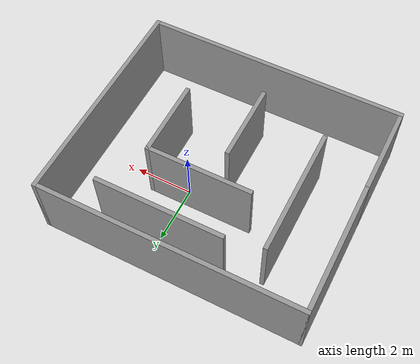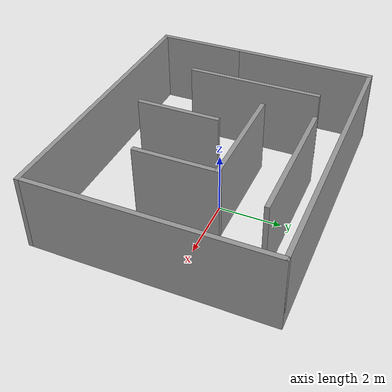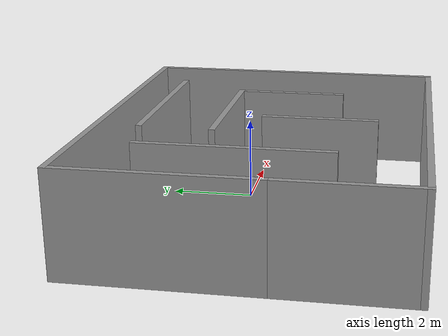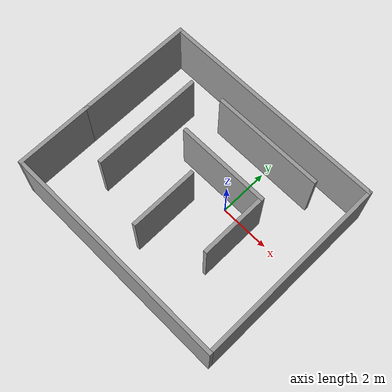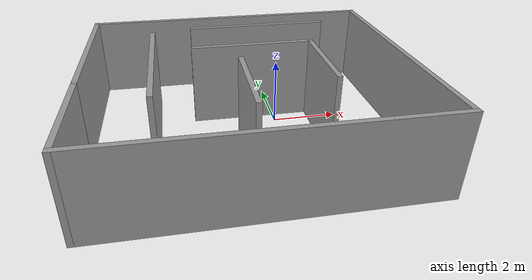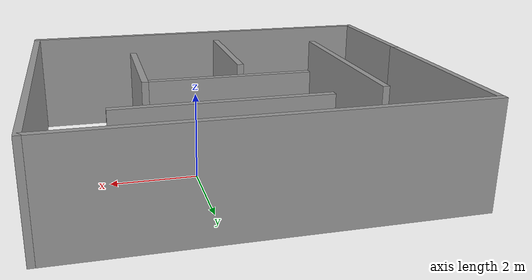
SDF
<?xml version='1.0'?>
<sdf version='1.7'>
  <model name='maze'>
    <pose>-0.983185 -0.631696 0 0 -0 0</pose>
    <link name='Wall_10'>
      <collision name='Wall_10_Collision'>
        <geometry>
          <box>
            <size>3.75 0.15 2.5</size>
          </box>
        </geometry>
        <pose>0 0 1.25 0 -0 0</pose>
      </collision>
      <visual name='Wall_10_Visual'>
        <pose>0 0 1.25 0 -0 0</pose>
        <geometry>
          <box>
            <size>3.75 0.15 2.5</size>
          </box>
        </geometry>
        <material>
          <script>
            <uri>file://media/materials/scripts/gazebo.material</uri>
            <name>Gazebo/Grey</name>
          </script>
          <ambient>1 1 1 1</ambient>
        </material>
        <meta>
          <layer>0</layer>
        </meta>
      </visual>
      <pose>0.350059 1.05811 0 0 -0 0</pose>
    </link>
    <link name='Wall_11'>
      <collision name='Wall_11_Collision'>
        <geometry>
          <box>
            <size>2.75 0.15 2.5</size>
          </box>
        </geometry>
        <pose>0 0 1.25 0 -0 0</pose>
      </collision>
      <visual name='Wall_11_Visual'>
        <pose>0 0 1.25 0 -0 0</pose>
        <geometry>
          <box>
            <size>2.75 0.15 2.5</size>
          </box>
        </geometry>
        <material>
          <script>
            <uri>file://media/materials/scripts/gazebo.material</uri>
            <name>Gazebo/Grey</name>
          </script>
          <ambient>1 1 1 1</ambient>
        </material>
        <meta>
          <layer>0</layer>
        </meta>
      </visual>
      <pose>2.15006 -0.241885 0 0 -0 -1.5708</pose>
    </link>
    <link name='Wall_13'>
      <collision name='Wall_13_Collision'>
        <geometry>
          <box>
            <size>2.75 0.15 2.5</size>
          </box>
        </geometry>
        <pose>0 0 1.25 0 -0 0</pose>
      </collision>
      <visual name='Wall_13_Visual'>
        <pose>0 0 1.25 0 -0 0</pose>
        <geometry>
          <box>
            <size>2.75 0.15 2.5</size>
          </box>
        </geometry>
        <material>
          <script>
            <uri>file://media/materials/scripts/gazebo.material</uri>
            <name>Gazebo/Grey</name>
          </script>
          <ambient>1 1 1 1</ambient>
        </material>
        <meta>
          <layer>0</layer>
        </meta>
      </visual>
      <pose>-0.177816 -1.25414 0 0 -0 -1.5708</pose>
    </link>
    <link name='Wall_15'>
      <collision name='Wall_15_Collision'>
        <geometry>
          <box>
            <size>4.5 0.15 2.5</size>
          </box>
        </geometry>
        <pose>0 0 1.25 0 -0 0</pose>
      </collision>
      <visual name='Wall_15_Visual'>
        <pose>0 0 1.25 0 -0 0</pose>
        <geometry>
          <box>
            <size>4.5 0.15 2.5</size>
          </box>
        </geometry>
        <material>
          <script>
            <uri>file://media/materials/scripts/gazebo.material</uri>
            <name>Gazebo/Grey</name>
          </script>
          <ambient>1 1 1 1</ambient>
        </material>
        <meta>
          <layer>0</layer>
        </meta>
      </visual>
      <pose>0.801106 2.7898 0 0 -0 0</pose>
    </link>
    <link name='Wall_2'>
      <collision name='Wall_2_Collision'>
        <geometry>
          <box>
            <size>4.75 0.15 2.5</size>
          </box>
        </geometry>
        <pose>0 0 1.25 0 -0 0</pose>
      </collision>
      <visual name='Wall_2_Visual'>
        <pose>0 0 1.25 0 -0 0</pose>
        <geometry>
          <box>
            <size>4.75 0.15 2.5</size>
          </box>
        </geometry>
        <material>
          <script>
            <uri>file://media/materials/scripts/gazebo.material</uri>
            <name>Gazebo/Grey</name>
          </script>
          <ambient>1 1 1 1</ambient>
        </material>
        <meta>
          <layer>0</layer>
        </meta>
      </visual>
      <pose>-4.55 1.5 0 0 -0 1.5708</pose>
    </link>
    <link name='Wall_3'>
      <collision name='Wall_3_Collision'>
        <geometry>
          <box>
            <size>9.25 0.15 2.5</size>
          </box>
        </geometry>
        <pose>0 0 1.25 0 -0 0</pose>
      </collision>
      <visual name='Wall_3_Visual'>
        <pose>0 0 1.25 0 -0 0</pose>
        <geometry>
          <box>
            <size>9.25 0.15 2.5</size>
          </box>
        </geometry>
        <material>
          <script>
            <uri>file://media/materials/scripts/gazebo.material</uri>
            <name>Gazebo/Grey</name>
          </script>
          <ambient>1 1 1 1</ambient>
        </material>
        <meta>
          <layer>0</layer>
        </meta>
      </visual>
      <pose>-0 3.8 0 0 -0 0</pose>
    </link>
    <link name='Wall_4'>
      <collision name='Wall_4_Collision'>
        <geometry>
          <box>
            <size>7.75 0.15 2.5</size>
          </box>
        </geometry>
        <pose>0 0 1.25 0 -0 0</pose>
      </collision>
      <visual name='Wall_4_Visual'>
        <pose>0 0 1.25 0 -0 0</pose>
        <geometry>
          <box>
            <size>7.75 0.15 2.5</size>
          </box>
        </geometry>
        <material>
          <script>
            <uri>file://media/materials/scripts/gazebo.material</uri>
            <name>Gazebo/Grey</name>
          </script>
          <ambient>1 1 1 1</ambient>
        </material>
        <meta>
          <layer>0</layer>
        </meta>
      </visual>
      <pose>4.55 -0 0 0 -0 -1.5708</pose>
    </link>
    <link name='Wall_5'>
      <collision name='Wall_5_Collision'>
        <geometry>
          <box>
            <size>9.25 0.15 2.5</size>
          </box>
        </geometry>
        <pose>0 0 1.25 0 -0 0</pose>
      </collision>
      <visual name='Wall_5_Visual'>
        <pose>0 0 1.25 0 -0 0</pose>
        <geometry>
          <box>
            <size>9.25 0.15 2.5</size>
          </box>
        </geometry>
        <material>
          <script>
            <uri>file://media/materials/scripts/gazebo.material</uri>
            <name>Gazebo/Grey</name>
          </script>
          <ambient>1 1 1 1</ambient>
        </material>
        <meta>
          <layer>0</layer>
        </meta>
      </visual>
      <pose>-0 -3.8 0 0 -0 3.14159</pose>
    </link>
    <link name='Wall_6'>
      <collision name='Wall_6_Collision'>
        <geometry>
          <box>
            <size>3.15 0.15 2.5</size>
          </box>
        </geometry>
        <pose>0 0 1.25 0 -0 0</pose>
      </collision>
      <visual name='Wall_6_Visual'>
        <pose>0 0 1.25 0 -0 0</pose>
        <geometry>
          <box>
            <size>3.15 0.15 2.5</size>
          </box>
        </geometry>
        <material>
          <script>
            <uri>file://media/materials/scripts/gazebo.material</uri>
            <name>Gazebo/Grey</name>
          </script>
          <ambient>1 1 1 1</ambient>
        </material>
        <meta>
          <layer>0</layer>
        </meta>
      </visual>
      <pose>-4.55 -2.3 0 0 -0 1.5708</pose>
    </link>
    <link name='Wall_8'>
      <collision name='Wall_8_Collision'>
        <geometry>
          <box>
            <size>4.5 0.15 2.5</size>
          </box>
        </geometry>
        <pose>0 0 1.25 0 -0 0</pose>
      </collision>
      <visual name='Wall_8_Visual'>
        <pose>0 0 1.25 0 -0 0</pose>
        <geometry>
          <box>
            <size>4.5 0.15 2.5</size>
          </box>
        </geometry>
        <material>
          <script>
            <uri>file://media/materials/scripts/gazebo.material</uri>
            <name>Gazebo/Grey</name>
          </script>
          <ambient>1 1 1 1</ambient>
        </material>
        <meta>
          <layer>0</layer>
        </meta>
      </visual>
      <pose>-2.67355 0.346126 0 0 -0 -1.5708</pose>
    </link>
    <static>1</static>
  </model>
</sdf>
